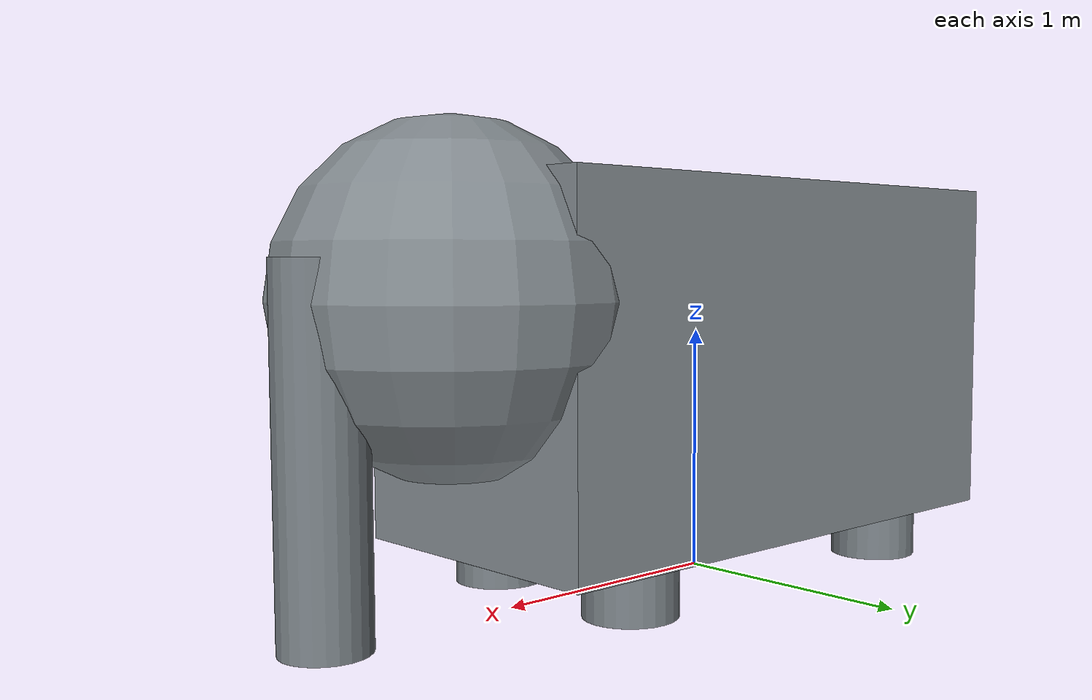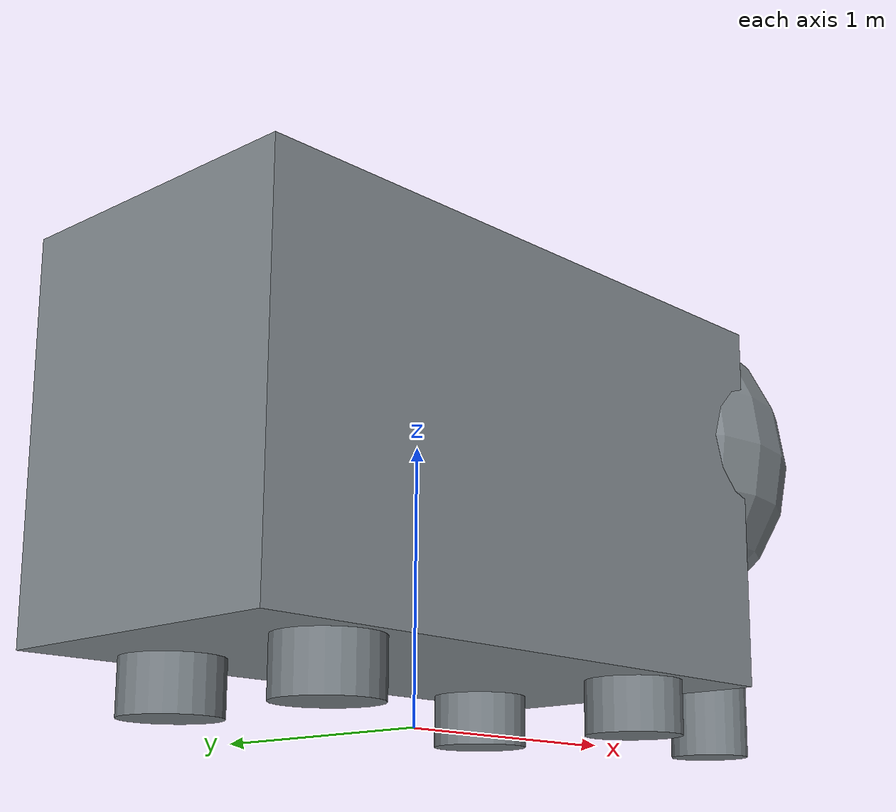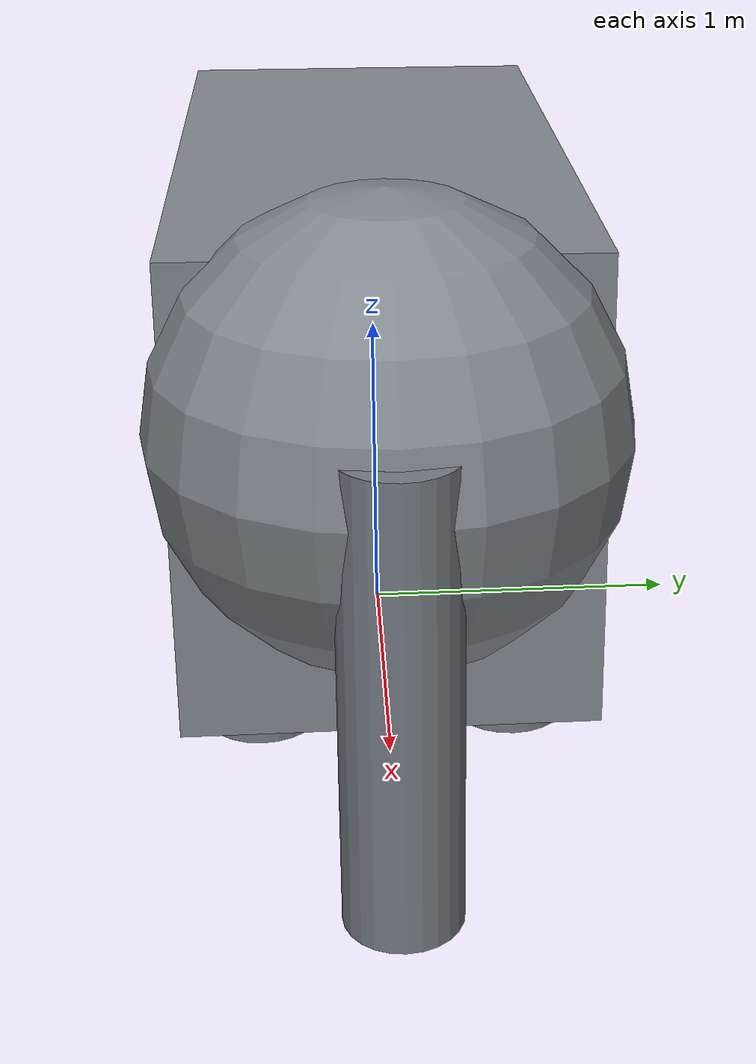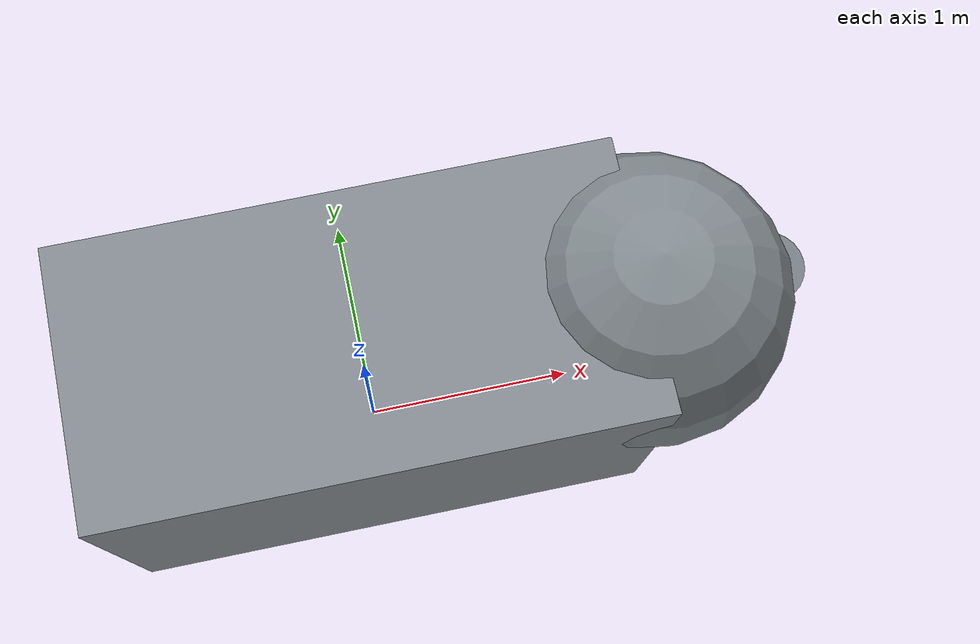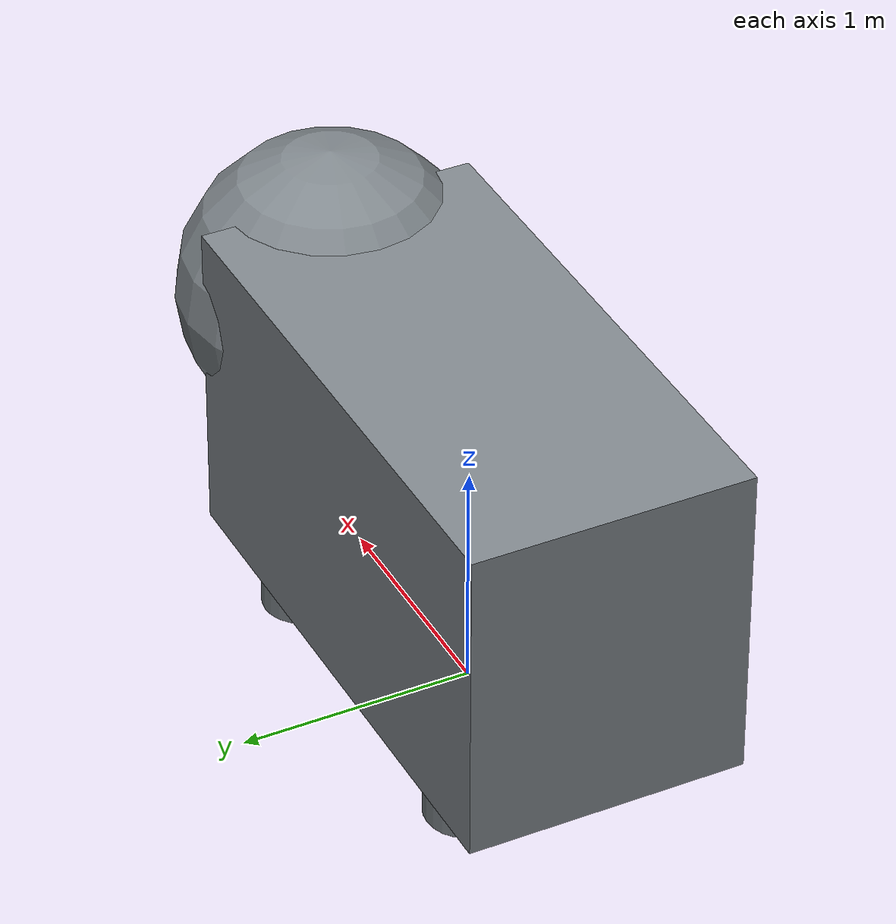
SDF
<?xml version="1.0"?>
<sdf version="1.9">
  <model name="elephant">
    <static>true</static>
    <link name="body">
      <visual name="torso">
        <pose>0 0 0.9 0 0 0</pose>
        <geometry><box><size>2.4 1.2 1.4</size></box></geometry>
        <material><ambient>0.45 0.48 0.5 1</ambient><diffuse>0.5 0.53 0.55 1</diffuse></material>
      </visual>
      <visual name="head">
        <pose>1.25 0 1.15 0 0 0</pose>
        <geometry><sphere><radius>0.65</radius></sphere></geometry>
        <material><ambient>0.45 0.48 0.5 1</ambient><diffuse>0.5 0.53 0.55 1</diffuse></material>
      </visual>
      <visual name="trunk">
        <pose>1.78 0 0.65 0 0 0</pose>
        <geometry><cylinder><radius>0.16</radius><length>1.3</length></cylinder></geometry>
        <material><ambient>0.4 0.43 0.45 1</ambient><diffuse>0.45 0.48 0.5 1</diffuse></material>
      </visual>
      <visual name="leg_front_left">
        <pose>0.75 0.38 0.3 0 0 0</pose>
        <geometry><cylinder><radius>0.18</radius><length>0.6</length></cylinder></geometry>
        <material><ambient>0.4 0.43 0.45 1</ambient><diffuse>0.45 0.48 0.5 1</diffuse></material>
      </visual>
      <visual name="leg_front_right">
        <pose>0.75 -0.38 0.3 0 0 0</pose>
        <geometry><cylinder><radius>0.18</radius><length>0.6</length></cylinder></geometry>
        <material><ambient>0.4 0.43 0.45 1</ambient><diffuse>0.45 0.48 0.5 1</diffuse></material>
      </visual>
      <visual name="leg_back_left">
        <pose>-0.75 0.38 0.3 0 0 0</pose>
        <geometry><cylinder><radius>0.18</radius><length>0.6</length></cylinder></geometry>
        <material><ambient>0.4 0.43 0.45 1</ambient><diffuse>0.45 0.48 0.5 1</diffuse></material>
      </visual>
      <visual name="leg_back_right">
        <pose>-0.75 -0.38 0.3 0 0 0</pose>
        <geometry><cylinder><radius>0.18</radius><length>0.6</length></cylinder></geometry>
        <material><ambient>0.4 0.43 0.45 1</ambient><diffuse>0.45 0.48 0.5 1</diffuse></material>
      </visual>
    </link>
  </model>
</sdf>
